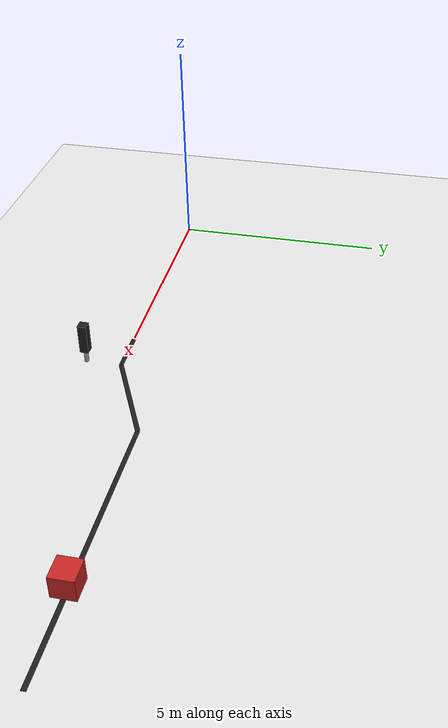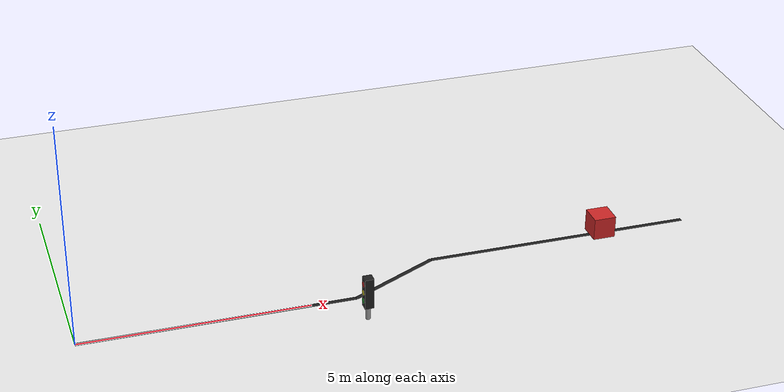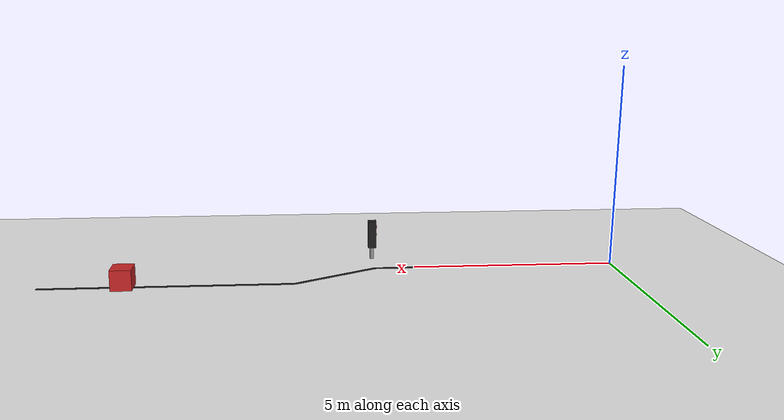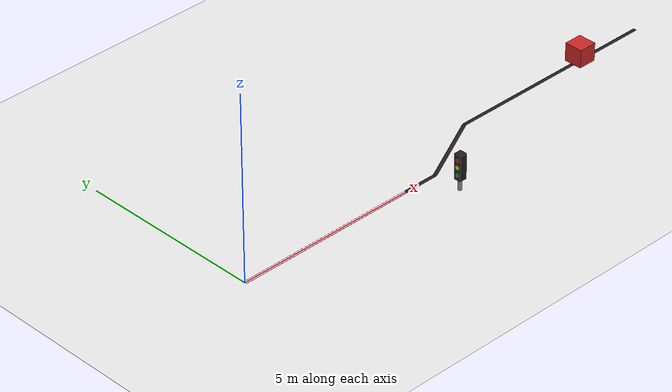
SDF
<?xml version="1.0" ?>
<sdf version="1.6">
  <world name="perception_world">
    <plugin name="gazebo_ros_state" filename="libgazebo_ros_state.so"/>
    <!-- Light Source (Offline-compatible) -->
    <light type="directional" name="sun">
      <cast_shadows>true</cast_shadows>
      <pose>0 0 10 0 0 0</pose>
      <diffuse>0.8 0.8 0.8 1</diffuse>
      <specular>0.2 0.2 0.2 1</specular>
      <attenuation>
        <range>1000</range>
        <constant>0.9</constant>
        <linear>0.01</linear>
        <quadratic>0.001</quadratic>
      </attenuation>
      <direction>-0.5 0.1 -0.9</direction>
    </light>

    <!-- White Ground Plane -->
    <model name="ground_plane">
      <static>true</static>
      <link name="link">
        <collision name="collision">
          <geometry>
            <plane>
              <normal>0 0 1</normal>
              <size>100 100</size>
            </plane>
          </geometry>
          <surface>
            <friction>
              <ode>
                <mu>100</mu>
                <mu2>50</mu2>
              </ode>
            </friction>
          </surface>
        </collision>
        <visual name="visual">
          <cast_shadows>false</cast_shadows>
          <geometry>
            <plane>
              <normal>0 0 1</normal>
              <size>100 100</size>
            </plane>
          </geometry>
          <material>
            <script>
              <uri>file://media/materials/scripts/gazebo.material</uri>
              <name>Gazebo/White</name>
            </script>
          </material>
        </visual>
      </link>
    </model>

    <!-- Track Lane Lines (Black Lines) -->
    <!-- Segment 1: Straight from (0,0) to (6,0) -->
    <model name="lane_segment_1">
      <static>true</static>
      <link name="link">
        <visual name="visual">
          <geometry>
            <box>
              <size>6.0 0.1 0.001</size>
            </box>
          </geometry>
          <material>
            <script>
              <uri>file://media/materials/scripts/gazebo.material</uri>
              <name>Gazebo/Black</name>
            </script>
          </material>
        </visual>
      </link>
      <pose>3.0 0.0 0.0005 0 0 0</pose>
    </model>

    <!-- Segment 2: Angled from (6,0) to (8,1) -->
    <model name="lane_segment_2">
      <static>true</static>
      <link name="link">
        <visual name="visual">
          <geometry>
            <box>
              <size>2.236 0.1 0.001</size>
            </box>
          </geometry>
          <material>
            <script>
              <uri>file://media/materials/scripts/gazebo.material</uri>
              <name>Gazebo/Black</name>
            </script>
          </material>
        </visual>
      </link>
      <pose>7.0 0.5 0.0005 0 0 0.4636</pose>
    </model>

    <!-- Segment 3: Straight from (8,1) to (14,1) -->
    <model name="lane_segment_3">
      <static>true</static>
      <link name="link">
        <visual name="visual">
          <geometry>
            <box>
              <size>6.0 0.1 0.001</size>
            </box>
          </geometry>
          <material>
            <script>
              <uri>file://media/materials/scripts/gazebo.material</uri>
              <name>Gazebo/Black</name>
            </script>
          </material>
        </visual>
      </link>
      <pose>11.0 1.0 0.0005 0 0 0</pose>
    </model>

    <!-- Traffic Light Obstacle Model (Custom built to be offline compatible) -->
    <model name="traffic_light">
      <static>true</static>
      <link name="pole">
        <collision name="collision">
          <geometry>
            <cylinder>
              <radius>0.05</radius>
              <length>0.4</length>
            </cylinder>
          </geometry>
        </collision>
        <visual name="visual">
          <geometry>
            <cylinder>
              <radius>0.05</radius>
              <length>0.4</length>
            </cylinder>
          </geometry>
          <material>
            <script>
              <uri>file://media/materials/scripts/gazebo.material</uri>
              <name>Gazebo/Grey</name>
            </script>
          </material>
        </visual>
        <pose>0 0 0.2 0 0 0</pose>
      </link>

      <link name="head">
        <collision name="collision">
          <geometry>
            <box>
              <size>0.2 0.2 0.7</size>
            </box>
          </geometry>
        </collision>
        <visual name="visual">
          <geometry>
            <box>
              <size>0.2 0.2 0.7</size>
            </box>
          </geometry>
          <material>
            <script>
              <uri>file://media/materials/scripts/gazebo.material</uri>
              <name>Gazebo/Black</name>
            </script>
          </material>
        </visual>
        <pose>0 0 0.65 0 0 0</pose>
      </link>

      <link name="red_light">
        <visual name="visual">
          <geometry>
            <cylinder>
              <radius>0.06</radius>
              <length>0.02</length>
            </cylinder>
          </geometry>
          <material>
            <script>
              <uri>file://media/materials/scripts/gazebo.material</uri>
              <name>Gazebo/Red</name>
            </script>
          </material>
        </visual>
        <pose>0 0.1 0.85 1.5708 0 0</pose>
      </link>

      <link name="yellow_light">
        <visual name="visual">
          <geometry>
            <cylinder>
              <radius>0.06</radius>
              <length>0.02</length>
            </cylinder>
          </geometry>
          <material>
            <script>
              <uri>file://media/materials/scripts/gazebo.material</uri>
              <name>Gazebo/Yellow</name>
            </script>
          </material>
        </visual>
        <pose>0 0.1 0.65 1.5708 0 0</pose>
      </link>

      <link name="green_light">
        <visual name="visual">
          <geometry>
            <cylinder>
              <radius>0.06</radius>
              <length>0.02</length>
            </cylinder>
          </geometry>
          <material>
            <script>
              <uri>file://media/materials/scripts/gazebo.material</uri>
              <name>Gazebo/Green</name>
            </script>
          </material>
        </visual>
        <pose>0 0.1 0.45 1.5708 0 0</pose>
      </link>
      <pose>6.0 -0.8 0.0 0 0 1.57079632679</pose>
    </model>

    <!-- Box Obstacle -->
    <model name="obstacle_box">
      <static>true</static>
      <link name="link">
        <collision name="collision">
          <geometry>
            <box>
              <size>0.5 0.5 0.5</size>
            </box>
          </geometry>
        </collision>
        <visual name="visual">
          <geometry>
            <box>
              <size>0.5 0.5 0.5</size>
            </box>
          </geometry>
          <material>
            <script>
              <uri>file://media/materials/scripts/gazebo.material</uri>
              <name>Gazebo/Red</name>
            </script>
          </material>
        </visual>
      </link>
      <pose>12.0 1.0 0.25 0 0 0</pose>
    </model>

  </world>
</sdf>
